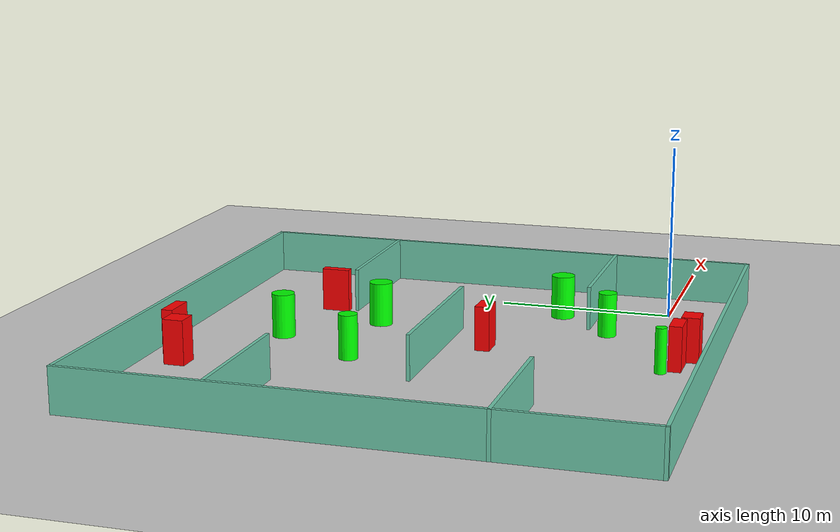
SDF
<sdf version="1.7">
 <world name="default">
  <light name="sun" type="directional">
   <pose>0 0 10 0 -0 0</pose>
   <diffuse>0.8 0.8 0.8 1</diffuse>
   <specular>0.2 0.2 0.2 1</specular>
   <attenuation>
    <range>1000</range>
    <constant>0.9</constant>
    <linear>0.01</linear>
    <quadratic>0.001</quadratic>
   </attenuation>
   <direction>-0.5 0.1 -0.9</direction>
   <spot><inner_angle>0</inner_angle><outer_angle>0</outer_angle><falloff>0</falloff></spot>
  </light>
  <model name="ground_plane">
   <static>1</static>
   <link name="link">
    <collision name="collision">
     <geometry><plane><normal>0 0 1</normal><size>100 100</size></plane></geometry>
     <surface>
      <contact><collide_bitmask>65535</collide_bitmask></contact>
      <friction><ode><mu>100</mu><mu2>50</mu2></ode></friction>
     </surface>
    </collision>
    <visual name="visual">
     <cast_shadows>0</cast_shadows>
     <geometry><plane><normal>0 0 1</normal><size>100 100</size></plane></geometry>
     <material>
      <script><uri>file://media/materials/scripts/gazebo.material</uri><name>Gazebo/Grey</name></script>
     </material>
    </visual>
   </link>
  </model>
  <gravity>0 0 -9.8</gravity>
  <magnetic_field>6e-06 2.3e-05 -4.2e-05</magnetic_field>
  <atmosphere type="adiabatic"/>
  <physics type="ode">
   <max_step_size>0.001</max_step_size>
   <real_time_factor>1</real_time_factor>
   <real_time_update_rate>1000</real_time_update_rate>
  </physics>
  <scene><ambient>0.4 0.4 0.4 1</ambient><background>0.7 0.7 0.7 1</background><shadows>1</shadows></scene>
  <spherical_coordinates>
   <surface_model>EARTH_WGS84</surface_model>
   <latitude_deg>0</latitude_deg>
   <longitude_deg>0</longitude_deg>
   <elevation>0</elevation>
   <heading_deg>0</heading_deg>
  </spherical_coordinates>
  <model name="my_base_walls">
   <link name="Wall_10">
    <collision name="Wall_10_Collision">
     <geometry><box><size>8.2 0.2 2.5</size></box></geometry>
     <pose>0 0 1.25 0 -0 0</pose>
    </collision>
    <visual name="Wall_10_Visual">
     <pose>0 0 1.25 0 -0 0</pose>
     <geometry><box><size>8.2 0.2 2.5</size></box></geometry>
     <material>
      <script><uri>file://media/materials/scripts/gazebo.material</uri><name>Gazebo/Grey</name></script>
      <ambient>0.435294 0.796078 0.67451 1</ambient>
     </material>
     <meta><layer>0</layer></meta>
    </visual>
    <pose>-11 -7 0 0 -0 0</pose>
   </link>
   <link name="Wall_12">
    <collision name="Wall_12_Collision">
     <geometry><box><size>8.2 0.2 2.5</size></box></geometry>
     <pose>0 0 1.25 0 -0 0</pose>
    </collision>
    <visual name="Wall_12_Visual">
     <pose>0 0 1.25 0 -0 0</pose>
     <geometry><box><size>8.2 0.2 2.5</size></box></geometry>
     <material>
      <script><uri>file://media/materials/scripts/gazebo.material</uri><name>Gazebo/Grey</name></script>
      <ambient>0.435294 0.796078 0.67451 1</ambient>
     </material>
     <meta><layer>0</layer></meta>
    </visual>
    <pose>-11 7 0 0 -0 0</pose>
   </link>
   <link name="Wall_14">
    <collision name="Wall_14_Collision">
     <geometry><box><size>8.2 0.2 2.5</size></box></geometry>
     <pose>0 0 1.25 0 -0 0</pose>
    </collision>
    <visual name="Wall_14_Visual">
     <pose>0 0 1.25 0 -0 0</pose>
     <geometry><box><size>8.2 0.2 2.5</size></box></geometry>
     <material>
      <script><uri>file://media/materials/scripts/gazebo.material</uri><name>Gazebo/Grey</name></script>
      <ambient>0.435294 0.796078 0.67451 1</ambient>
     </material>
     <meta><layer>0</layer></meta>
    </visual>
    <pose>11 7 0 0 -0 3.14159</pose>
   </link>
   <link name="Wall_16">
    <collision name="Wall_16_Collision">
     <geometry><box><size>10.2 0.2 2.5</size></box></geometry>
     <pose>0 0 1.25 0 -0 0</pose>
    </collision>
    <visual name="Wall_16_Visual">
     <pose>0 0 1.25 0 -0 0</pose>
     <geometry><box><size>10.2 0.2 2.5</size></box></geometry>
     <material>
      <script><uri>file://media/materials/scripts/gazebo.material</uri><name>Gazebo/Grey</name></script>
      <ambient>0.435294 0.796078 0.67451 1</ambient>
     </material>
     <meta><layer>0</layer></meta>
    </visual>
    <pose>0 0 0 0 -0 3.14159</pose>
   </link>
   <link name="Wall_2">
    <collision name="Wall_2_Collision">
     <geometry><box><size>30.2 0.2 2.5</size></box></geometry>
     <pose>0 0 1.25 0 -0 0</pose>
    </collision>
    <visual name="Wall_2_Visual">
     <pose>0 0 1.25 0 -0 0</pose>
     <geometry><box><size>30.2 0.2 2.5</size></box></geometry>
     <material>
      <script><uri>file://media/materials/scripts/gazebo.material</uri><name>Gazebo/Grey</name></script>
      <ambient>0.435294 0.796078 0.67451 1</ambient>
     </material>
     <meta><layer>0</layer></meta>
    </visual>
    <pose>0 -15 0 0 -0 3.14159</pose>
   </link>
   <link name="Wall_3">
    <collision name="Wall_3_Collision">
     <geometry><box><size>30.2 0.2 2.5</size></box></geometry>
     <pose>0 0 1.25 0 -0 0</pose>
    </collision>
    <visual name="Wall_3_Visual">
     <pose>0 0 1.25 0 -0 0</pose>
     <geometry><box><size>30.2 0.2 2.5</size></box></geometry>
     <material>
      <script><uri>file://media/materials/scripts/gazebo.material</uri><name>Gazebo/Grey</name></script>
      <ambient>0.435294 0.796078 0.67451 1</ambient>
     </material>
     <meta><layer>0</layer></meta>
    </visual>
    <pose>-15 0 0 0 -0 1.5708</pose>
   </link>
   <link name="Wall_4">
    <collision name="Wall_4_Collision">
     <geometry><box><size>30.2 0.2 2.5</size></box></geometry>
     <pose>0 0 1.25 0 -0 0</pose>
    </collision>
    <visual name="Wall_4_Visual">
     <pose>0 0 1.25 0 -0 0</pose>
     <geometry><box><size>30.2 0.2 2.5</size></box></geometry>
     <material>
      <script><uri>file://media/materials/scripts/gazebo.material</uri><name>Gazebo/Grey</name></script>
      <ambient>0.435294 0.796078 0.67451 1</ambient>
     </material>
     <meta><layer>0</layer></meta>
    </visual>
    <pose>0 15 0 0 -0 0</pose>
   </link>
   <link name="Wall_6">
    <collision name="Wall_6_Collision">
     <geometry><box><size>30.2 0.2 2.5</size></box></geometry>
     <pose>0 0 1.25 0 -0 0</pose>
    </collision>
    <visual name="Wall_6_Visual">
     <pose>0 0 1.25 0 -0 0</pose>
     <geometry><box><size>30.2 0.2 2.5</size></box></geometry>
     <material>
      <script><uri>file://media/materials/scripts/gazebo.material</uri><name>Gazebo/Grey</name></script>
      <ambient>0.435294 0.796078 0.67451 1</ambient>
     </material>
     <meta><layer>0</layer></meta>
    </visual>
    <pose>15 0 0 0 -0 1.5708</pose>
   </link>
   <link name="Wall_8">
    <collision name="Wall_8_Collision">
     <geometry><box><size>8.2 0.2 2.5</size></box></geometry>
     <pose>0 0 1.25 0 -0 0</pose>
    </collision>
    <visual name="Wall_8_Visual">
     <pose>0 0 1.25 0 -0 0</pose>
     <geometry><box><size>8.2 0.2 2.5</size></box></geometry>
     <material>
      <script><uri>file://media/materials/scripts/gazebo.material</uri><name>Gazebo/Grey</name></script>
      <ambient>0.435294 0.796078 0.67451 1</ambient>
     </material>
     <meta><layer>0</layer></meta>
    </visual>
    <pose>11 -7 0 0 -0 3.14159</pose>
   </link>
   <static>1</static>
   <pose>-11 11 0 0 -0 0</pose>
  </model>
  <model name="cylinder1">
   <static>1</static>
   <link name="link">
    <inertial>
     <mass>1</mass>
     <inertia><ixx>0.5</ixx><ixy>0</ixy><ixz>0</ixz><iyy>0.5</iyy><iyz>0</iyz><izz>1</izz></inertia>
    </inertial>
    <collision name="collision">
     <geometry><cylinder><radius>0.3145713855245851</radius><length>2.5</length></cylinder></geometry>
    </collision>
    <visual name="visual">
     <geometry><cylinder><radius>0.3145713855245851</radius><length>2.5</length></cylinder></geometry>
     <material>
      <ambient>0 1 0 1</ambient>
      <diffuse>0 1 0 1</diffuse>
      <specular>0.1 0.1 0.1 1</specular>
      <emissive>0 0 0 0</emissive>
     </material>
    </visual>
   </link>
   <pose>-10.946998227447846 -1.2616218225175286 1.25 0 0 0</pose>
  </model>
  <model name="cylinder2">
   <static>1</static>
   <link name="link">
    <inertial>
     <mass>1</mass>
     <inertia><ixx>0.5</ixx><ixy>0</ixy><ixz>0</ixz><iyy>0.5</iyy><iyz>0</iyz><izz>1</izz></inertia>
    </inertial>
    <collision name="collision">
     <geometry><cylinder><radius>0.5180039481323258</radius><length>2.5</length></cylinder></geometry>
    </collision>
    <visual name="visual">
     <geometry><cylinder><radius>0.5180039481323258</radius><length>2.5</length></cylinder></geometry>
     <material>
      <ambient>0 1 0 1</ambient>
      <diffuse>0 1 0 1</diffuse>
      <specular>0.1 0.1 0.1 1</specular>
      <emissive>0 0 0 0</emissive>
     </material>
    </visual>
   </link>
   <pose>-4.923615433228564 2.7526435901276294 1.25 0 0 0</pose>
  </model>
  <model name="cylinder3">
   <static>1</static>
   <link name="link">
    <inertial>
     <mass>1</mass>
     <inertia><ixx>0.5</ixx><ixy>0</ixy><ixz>0</ixz><iyy>0.5</iyy><iyz>0</iyz><izz>1</izz></inertia>
    </inertial>
    <collision name="collision">
     <geometry><cylinder><radius>0.6695457267246019</radius><length>2.5</length></cylinder></geometry>
    </collision>
    <visual name="visual">
     <geometry><cylinder><radius>0.6695457267246019</radius><length>2.5</length></cylinder></geometry>
     <material>
      <ambient>0 1 0 1</ambient>
      <diffuse>0 1 0 1</diffuse>
      <specular>0.1 0.1 0.1 1</specular>
      <emissive>0 0 0 0</emissive>
     </material>
    </visual>
   </link>
   <pose>-1.8113052818050193 5.992410847842589 1.25 0 0 0</pose>
  </model>
  <model name="cylinder4">
   <static>1</static>
   <link name="link">
    <inertial>
     <mass>1</mass>
     <inertia><ixx>0.5</ixx><ixy>0</ixy><ixz>0</ixz><iyy>0.5</iyy><iyz>0</iyz><izz>1</izz></inertia>
    </inertial>
    <collision name="collision">
     <geometry><cylinder><radius>0.6462060180521726</radius><length>2.5</length></cylinder></geometry>
    </collision>
    <visual name="visual">
     <geometry><cylinder><radius>0.6462060180521726</radius><length>2.5</length></cylinder></geometry>
     <material>
      <ambient>0 1 0 1</ambient>
      <diffuse>0 1 0 1</diffuse>
      <specular>0.1 0.1 0.1 1</specular>
      <emissive>0 0 0 0</emissive>
     </material>
    </visual>
   </link>
   <pose>-10.21067080618274 20.219580076672667 1.25 0 0 0</pose>
  </model>
  <model name="cylinder5">
   <static>1</static>
   <link name="link">
    <inertial>
     <mass>1</mass>
     <inertia><ixx>0.5</ixx><ixy>0</ixy><ixz>0</ixz><iyy>0.5</iyy><iyz>0</iyz><izz>1</izz></inertia>
    </inertial>
    <collision name="collision">
     <geometry><cylinder><radius>0.6655962432404657</radius><length>2.5</length></cylinder></geometry>
    </collision>
    <visual name="visual">
     <geometry><cylinder><radius>0.6655962432404657</radius><length>2.5</length></cylinder></geometry>
     <material>
      <ambient>0 1 0 1</ambient>
      <diffuse>0 1 0 1</diffuse>
      <specular>0.1 0.1 0.1 1</specular>
      <emissive>0 0 0 0</emissive>
     </material>
    </visual>
   </link>
   <pose>-6.31192317027773 15.740213873869866 1.25 0 0 0</pose>
  </model>
  <model name="cylinder6">
   <static>1</static>
   <link name="link">
    <inertial>
     <mass>1</mass>
     <inertia><ixx>0.5</ixx><ixy>0</ixy><ixz>0</ixz><iyy>0.5</iyy><iyz>0</iyz><izz>1</izz></inertia>
    </inertial>
    <collision name="collision">
     <geometry><cylinder><radius>0.5284807633061483</radius><length>2.5</length></cylinder></geometry>
    </collision>
    <visual name="visual">
     <geometry><cylinder><radius>0.5284807633061483</radius><length>2.5</length></cylinder></geometry>
     <material>
      <ambient>0 1 0 1</ambient>
      <diffuse>0 1 0 1</diffuse>
      <specular>0.1 0.1 0.1 1</specular>
      <emissive>0 0 0 0</emissive>
     </material>
    </visual>
   </link>
   <pose>-13.200588131214085 15.297678670667377 1.25 0 0 0</pose>
  </model>
  <model name="box1">
   <static>1</static>
   <link name="link">
    <inertial>
     <mass>1</mass>
     <inertia><ixx>0.083</ixx><ixy>0</ixy><ixz>0</ixz><iyy>0.083</iyy><iyz>0</iyz><izz>0.083</izz></inertia>
    </inertial>
    <collision name="collision">
     <geometry><box><size>1.3752865910883902 0.8211267121159866 2.5</size></box></geometry>
    </collision>
    <visual name="visual">
     <geometry><box><size>1.3752865910883902 0.8211267121159866 2.5</size></box></geometry>
     <material>
      <ambient>1 0 0 1</ambient>
      <diffuse>1 0 0 1</diffuse>
      <specular>0.1 0.1 0.1 1</specular>
      <emissive>0 0 0 0</emissive>
     </material>
    </visual>
    <sensor name="my_contact" type="contact">
     <contact><collision>box_collision</collision><topic>__default_topic__</topic></contact>
    </sensor>
   </link>
   <pose>-9.192467469905345 8.734763665174542 1.25 0 0 0</pose>
  </model>
  <model name="box2">
   <static>1</static>
   <link name="link">
    <inertial>
     <mass>1</mass>
     <inertia><ixx>0.083</ixx><ixy>0</ixy><ixz>0</ixz><iyy>0.083</iyy><iyz>0</iyz><izz>0.083</izz></inertia>
    </inertial>
    <collision name="collision">
     <geometry><box><size>0.5013802464775597 1.6162043304826201 2.5</size></box></geometry>
    </collision>
    <visual name="visual">
     <geometry><box><size>0.5013802464775597 1.6162043304826201 2.5</size></box></geometry>
     <material>
      <ambient>1 0 0 1</ambient>
      <diffuse>1 0 0 1</diffuse>
      <specular>0.1 0.1 0.1 1</specular>
      <emissive>0 0 0 0</emissive>
     </material>
    </visual>
    <sensor name="my_contact" type="contact">
     <contact><collision>box_collision</collision><topic>__default_topic__</topic></contact>
    </sensor>
   </link>
   <pose>-4.147356424067873 19.224680817299117 1.25 0 0 0</pose>
  </model>
  <model name="box3">
   <static>1</static>
   <link name="link">
    <inertial>
     <mass>1</mass>
     <inertia><ixx>0.083</ixx><ixy>0</ixy><ixz>0</ixz><iyy>0.083</iyy><iyz>0</iyz><izz>0.083</izz></inertia>
    </inertial>
    <collision name="collision">
     <geometry><box><size>1.6416080379710742 0.7181620193939958 2.5</size></box></geometry>
    </collision>
    <visual name="visual">
     <geometry><box><size>1.6416080379710742 0.7181620193939958 2.5</size></box></geometry>
     <material>
      <ambient>1 0 0 1</ambient>
      <diffuse>1 0 0 1</diffuse>
      <specular>0.1 0.1 0.1 1</specular>
      <emissive>0 0 0 0</emissive>
     </material>
    </visual>
    <sensor name="my_contact" type="contact">
     <contact><collision>box_collision</collision><topic>__default_topic__</topic></contact>
    </sensor>
   </link>
   <pose>-9.829828337359181 -1.9551560521788467 1.25 0 0 0</pose>
  </model>
  <model name="box4">
   <static>1</static>
   <link name="link">
    <inertial>
     <mass>1</mass>
     <inertia><ixx>0.083</ixx><ixy>0</ixy><ixz>0</ixz><iyy>0.083</iyy><iyz>0</iyz><izz>0.083</izz></inertia>
    </inertial>
    <collision name="collision">
     <geometry><box><size>1.8811253288112042 0.6365867234905634 2.5</size></box></geometry>
    </collision>
    <visual name="visual">
     <geometry><box><size>1.8811253288112042 0.6365867234905634 2.5</size></box></geometry>
     <material>
      <ambient>1 0 0 1</ambient>
      <diffuse>1 0 0 1</diffuse>
      <specular>0.1 0.1 0.1 1</specular>
      <emissive>0 0 0 0</emissive>
     </material>
    </visual>
    <sensor name="my_contact" type="contact">
     <contact><collision>box_collision</collision><topic>__default_topic__</topic></contact>
    </sensor>
   </link>
   <pose>-14.424719519906986 24.927495089959127 1.25 0 0 0</pose>
  </model>
  <model name="box5">
   <static>1</static>
   <link name="link">
    <inertial>
     <mass>1</mass>
     <inertia><ixx>0.083</ixx><ixy>0</ixy><ixz>0</ixz><iyy>0.083</iyy><iyz>0</iyz><izz>0.083</izz></inertia>
    </inertial>
    <collision name="collision">
     <geometry><box><size>1.2116804630395186 1.1684872088577491 2.5</size></box></geometry>
    </collision>
    <visual name="visual">
     <geometry><box><size>1.2116804630395186 1.1684872088577491 2.5</size></box></geometry>
     <material>
      <ambient>1 0 0 1</ambient>
      <diffuse>1 0 0 1</diffuse>
      <specular>0.1 0.1 0.1 1</specular>
      <emissive>0 0 0 0</emissive>
     </material>
    </visual>
    <sensor name="my_contact" type="contact">
     <contact><collision>box_collision</collision><topic>__default_topic__</topic></contact>
    </sensor>
   </link>
   <pose>-16.473911958308722 23.78536668509263 1.25 0 0 0</pose>
  </model>
  <model name="box6">
   <static>1</static>
   <link name="link">
    <inertial>
     <mass>1</mass>
     <inertia><ixx>0.083</ixx><ixy>0</ixy><ixz>0</ixz><iyy>0.083</iyy><iyz>0</iyz><izz>0.083</izz></inertia>
    </inertial>
    <collision name="collision">
     <geometry><box><size>1.2338994131354086 1.001995375692711 2.5</size></box></geometry>
    </collision>
    <visual name="visual">
     <geometry><box><size>1.2338994131354086 1.001995375692711 2.5</size></box></geometry>
     <material>
      <ambient>1 0 0 1</ambient>
      <diffuse>1 0 0 1</diffuse>
      <specular>0.1 0.1 0.1 1</specular>
      <emissive>0 0 0 0</emissive>
     </material>
    </visual>
    <sensor name="my_contact" type="contact">
     <contact><collision>box_collision</collision><topic>__default_topic__</topic></contact>
    </sensor>
   </link>
   <pose>-8.180353374786591 -2.469910326906 1.25 0 0 0</pose>
  </model>
 </world>
</sdf>
